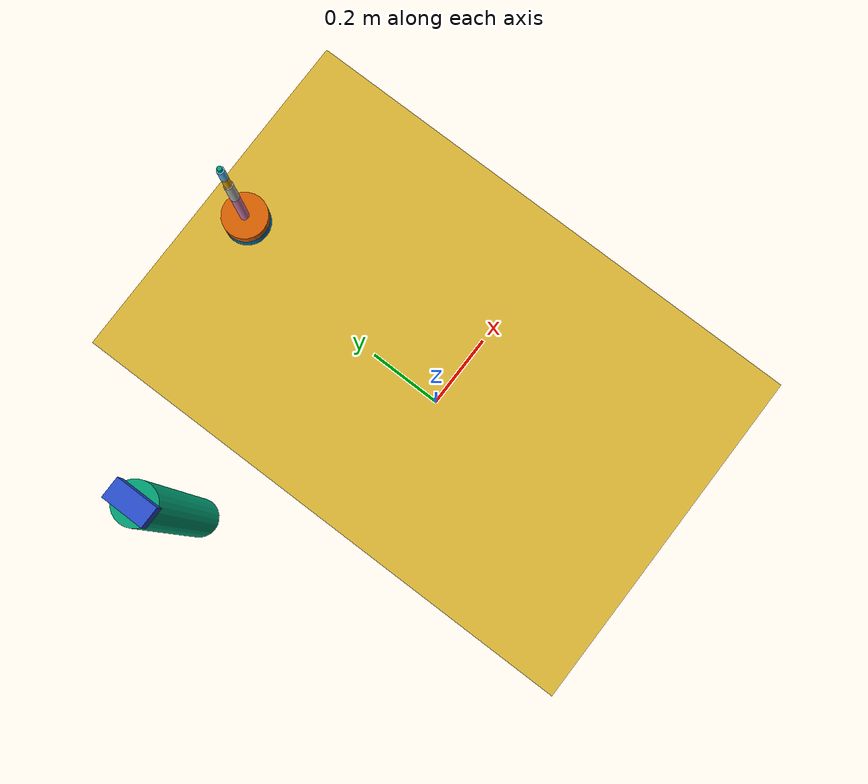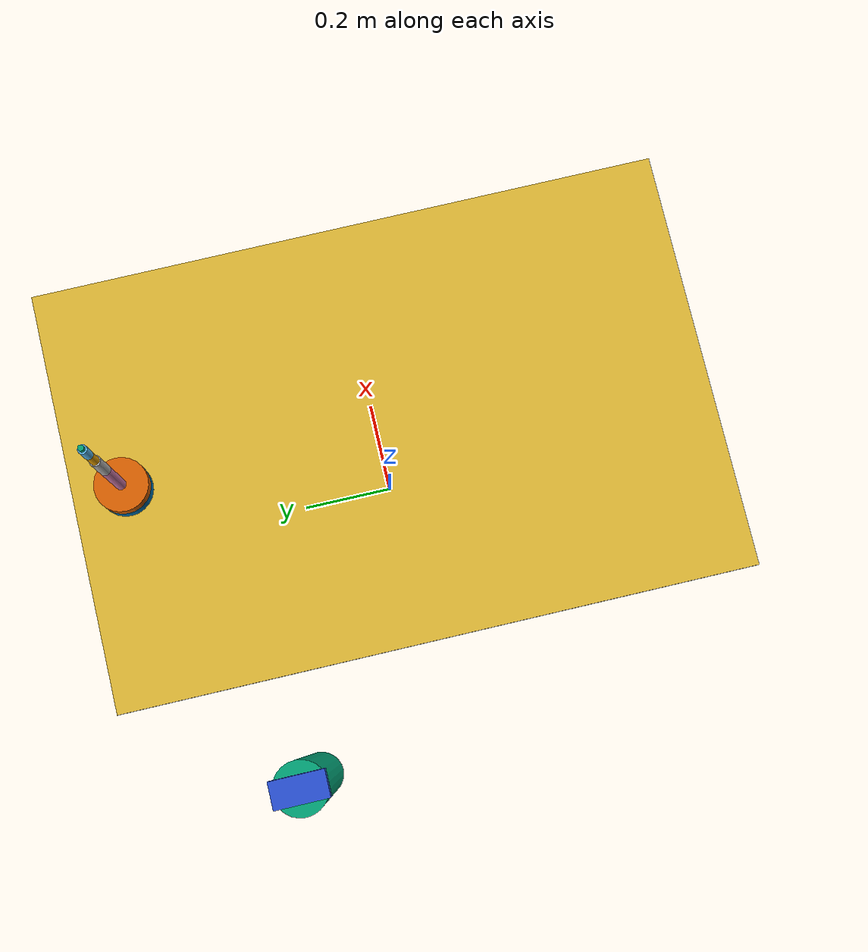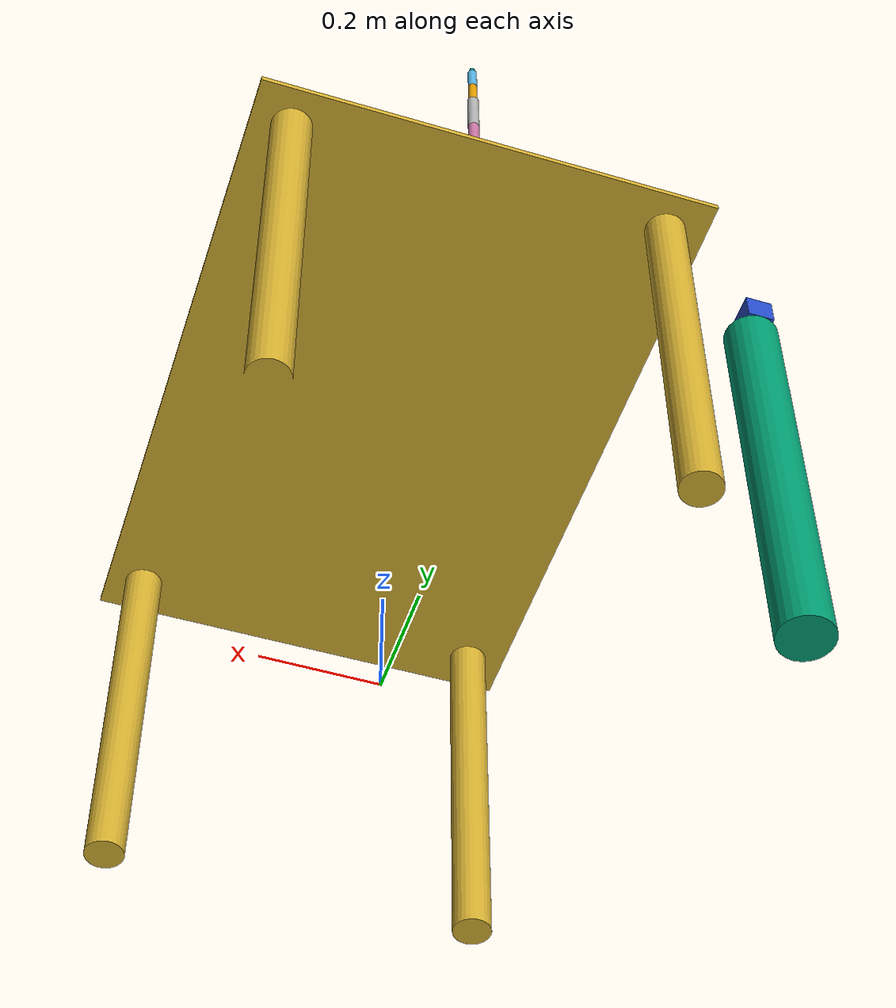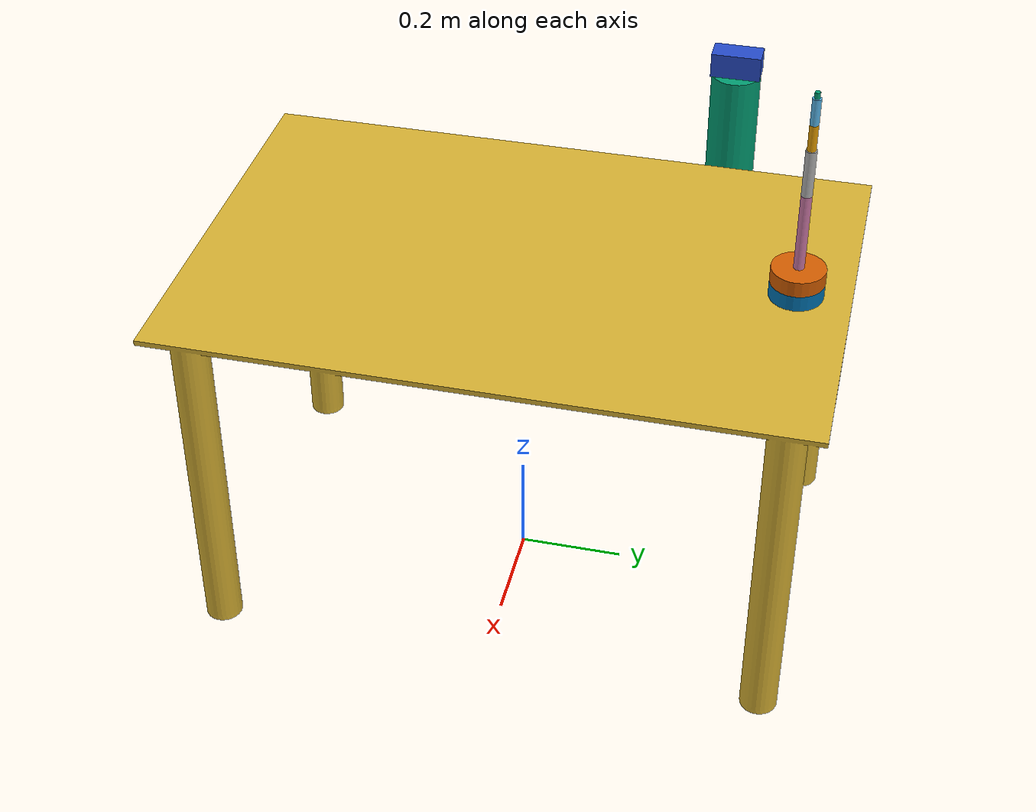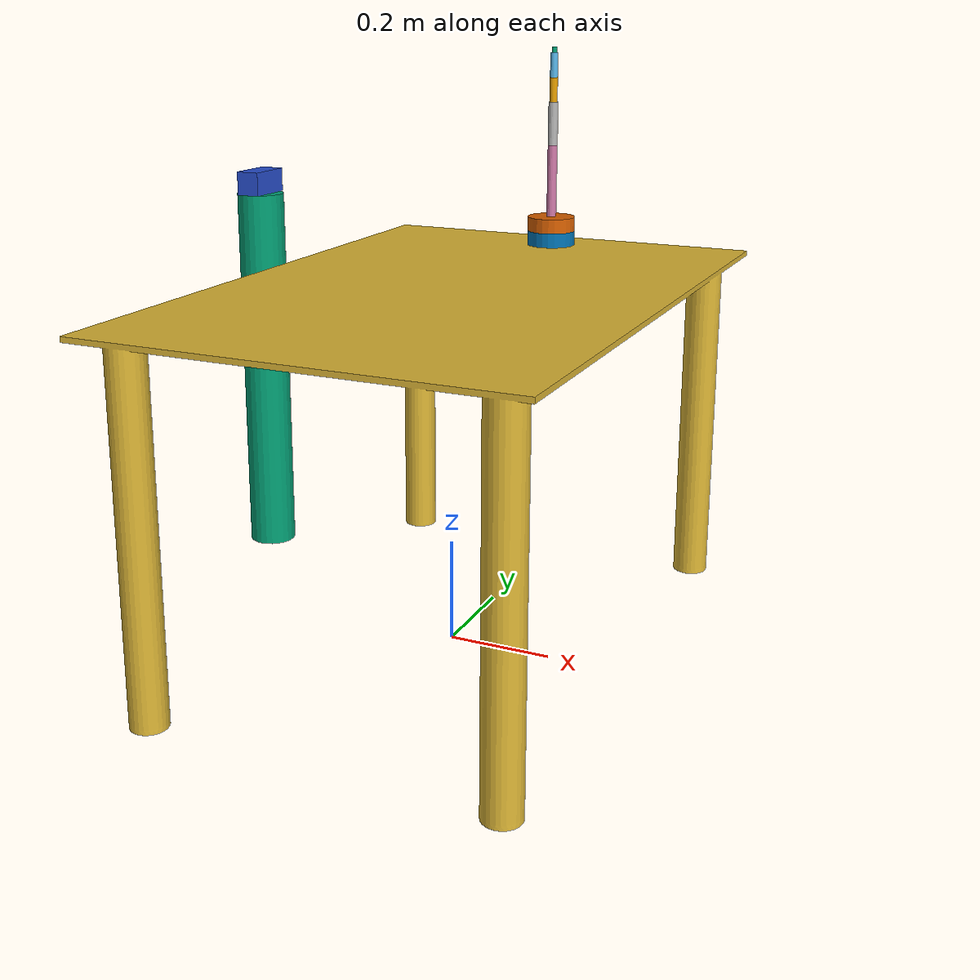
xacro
<?xml version="1.0" ?>

<robot name="zobov_arm" xmlns:xacro="http://www.ros.org/wiki/xacro">

<!-- BGN - Include -->
  <xacro:include filename="$(find zobov_description)/urdf/robot_parameters.xacro" />
  <xacro:include filename="$(find zobov_description)/urdf/links_joints.xacro" />
<!-- END - Include -->

<!-- BGN - World description -->

  <!-- World frame (for Gazebo) -->
  <link name="world"/>

  <!-- Arm fixed to world frame  -->
  <joint name="world_box" type="fixed">
    <parent link="world"/>
    <child link="table"/>
  </joint>

  <m_link_mesh name="table" color="gold"
              origin_rpy="1.57 0 0" origin_xyz="0 0 0"
              mass="157.633"
              ixx="13.235" ixy="0" ixz="0"
              iyy="13.235" iyz="0"
              izz="9.655"
              meshfile_stl="package://zobov_description/meshes/table.stl"
              meshfile_dae="package://zobov_description/meshes/table.dae"
              meshscale="0.001 0.001 0.001" />

  <gazebo reference="table">
    <material>Gazebo/Gold</material>
  </gazebo>

  <joint name="table_${link_00_name}" type="fixed">
    <parent link="table" origin_xyz="0 0 0"/>
    <child link="${link_00_name}"/>
  </joint>

<!-- END - World description -->

<!-- BGN - Depth Camera description -->

  <joint name="world__camera_base" type="fixed">
    <parent link="world"/>
    <child link="camera_base"/>
  </joint>

  <m_link_cylinder name="camera_base"
              origin_rpy="0 0 0" origin_xyz="-0.6 0.3 0.4"
              mass="3000.0"
              radius="0.05" length="0.8" />

  <joint name="base_joint" type="fixed">
    <axis xyz="0 1 0" />
    <origin xyz="-0.6 0.3 0.825" rpy="0 0 0"/>
    <parent link="camera_base"/>
    <child link="${camera_name}"/>
  </joint>

  <link name="${camera_name}">
    <collision>
      <origin xyz="0 0 0" rpy="0 0 0"/>
      <geometry>
    <box size="0.05 0.1 0.05"/>
      </geometry>
    </collision>

    <visual>
      <origin xyz="0 0 0" rpy="0 0 0"/>
      <geometry>
        <box size="0.05 0.1 0.05"/>
      </geometry>
      <material name="blue"/>
    </visual>

    <inertial>
      <mass value="1e-5" />
      <origin xyz="0 0 0" rpy="0 0 0"/>
      <inertia ixx="1e-6" ixy="0" ixz="0" iyy="1e-6" iyz="0" izz="1e-6" />
    </inertial>
  </link>

  <gazebo reference="${camera_name}">
    <material>Gazebo/Blue</material>
  </gazebo>

  <gazebo reference="${camera_name}">
    <sensor type="depth" name="openni_camera_camera">
        <always_on>1</always_on>
        <visualize>true</visualize>
        <camera>
            <horizontal_fov>1.047</horizontal_fov>
            <image>
                <width>640</width>
                <height>480</height>
                <format>R8G8B8</format>
            </image>
            <depth_camera>

            </depth_camera>
            <clip>
                <near>0.1</near>
                <far>100</far>
            </clip>
        </camera>
        <plugin name="camera_controller" filename="libgazebo_ros_openni_kinect.so">
            <alwaysOn>true</alwaysOn>
                <updateRate>10.0</updateRate>
                <cameraName>camera</cameraName>
                <frameName>openni_camera_link</frameName>
            <imageTopicName>rgb/image_raw</imageTopicName>
            <depthImageTopicName>depth/image_raw</depthImageTopicName>
            <pointCloudTopicName>depth/points</pointCloudTopicName>
            <cameraInfoTopicName>rgb/camera_info</cameraInfoTopicName>
            <depthImageCameraInfoTopicName>depth/camera_info</depthImageCameraInfoTopicName>
            <pointCloudCutoff>0.4</pointCloudCutoff>
                <hackBaseline>0.07</hackBaseline>
                <distortionK1>0.0</distortionK1>
                <distortionK2>0.0</distortionK2>
                <distortionK3>0.0</distortionK3>
                <distortionT1>0.0</distortionT1>
                <distortionT2>0.0</distortionT2>
            <CxPrime>0.0</CxPrime>
            <Cx>0.0</Cx>
            <Cy>0.0</Cy>
            <focalLength>0.0</focalLength>
        </plugin>
    </sensor>
  </gazebo>

<!-- END - Depth Camera description -->

<!-- BGN - Robot description -->

  <m_link_cylinder name="${link_00_name}"
              origin_rpy="0 0 0" origin_xyz="0 0.5 0.715"
              mass="1000.0"
              radius="0.05" length="0.03" />

  <m_joint name="${link_00_name}__${link_01_name}" type="revolute"
           axis_xyz="0 0 1"
           origin_rpy="0 0 -1.57" origin_xyz="0 ${origin_y} ${base_l+origin_z}"
           parent="${link_00_name}" child="${link_01_name}"
           limit_e="1000" limit_l="-3.00" limit_u="3.00" limit_v="0.5" />

  <m_link_cylinder name="${link_01_name}"
              origin_rpy="0 0 0" origin_xyz="${origin_x} 0 ${link_01_l/2}"
              mass="500.0"
              radius="${link_01_r}" length="${link_01_l}" />

  <m_joint name="${link_01_name}__${link_02_name}" type="revolute"
           axis_xyz="0 1 0"
           origin_rpy="0 0 0" origin_xyz="0 0 ${link_01_l}"
           parent="${link_01_name}" child="${link_02_name}"
           limit_e="1000" limit_l="-1.57" limit_u="1.57" limit_v="0.5" />

  <m_link_cylinder name="${link_02_name}"
              origin_rpy="0 0 0" origin_xyz="0 0 ${link_02_l/2}"
              mass="200.0"
              radius="${link_02_r}" length="${link_02_l}" />

  <m_joint name="${link_02_name}__${link_03_name}" type="revolute"
           axis_xyz="0 1 0"
           origin_rpy="0 0 0" origin_xyz="0 0 ${link_02_l}"
           parent="${link_02_name}" child="${link_03_name}"
           limit_e="1000" limit_l="-1.57" limit_u="1.57" limit_v="0.5" />

  <m_link_cylinder name="${link_03_name}"
              origin_rpy="0 0 0" origin_xyz="0 0 ${link_03_l/2}"
              mass="200.0"
              radius="${link_03_r}" length="${link_03_l}" />

  <m_joint name="${link_03_name}__${link_04_name}" type="revolute"
           axis_xyz="0 1 0"
           origin_rpy="0 0 0" origin_xyz="0 0 ${link_03_l}"
           parent="${link_03_name}" child="${link_04_name}"
           limit_e="1000" limit_l="-1.57" limit_u="1.57" limit_v="0.5" />

  <m_link_cylinder name="${link_04_name}"
              origin_rpy="0 0 0" origin_xyz="0 0 ${link_04_l/2}"
              mass="50.0"
              radius="${link_04_r}" length="${link_04_l}" />

  <m_joint name="${link_04_name}__${link_05_name}" type="revolute"
           axis_xyz="0 0 1"
           origin_rpy="0 0 0" origin_xyz="0 0 ${link_04_l}"
           parent="${link_04_name}" child="${link_05_name}"
           limit_e="1000" limit_l="-3.0" limit_u="3.0" limit_v="0.5" />

  <m_link_cylinder name="${link_05_name}"
              origin_rpy="0 0 0" origin_xyz="0 0 ${link_05_l/2}"
              mass="50.0"
              radius="${link_05_r}" length="${link_05_l}" />

  <m_joint name="${link_05_name}__${gripper_name}" type="revolute"
           axis_xyz="0 0 1"
           origin_rpy="0 0 0" origin_xyz="0 0 ${link_05_l}"
           parent="${link_05_name}" child="${gripper_name}"
           limit_e="1000" limit_l="-3.0" limit_u="3.0" limit_v="0.5" />

  <m_link_cylinder name="${gripper_name}"
              origin_rpy="0 0 0" origin_xyz="0 0 ${gripper_l/2}"
              mass="10.0"
              radius="${gripper_r}" length="${gripper_l}" />

<!-- END - Robot description -->

<!-- END - Tryout  -->

<!-- BGN - Gazebo Plugin -->
  <gazebo>
    <plugin name="gazebo_ros_control" filename="libgazebo_ros_control.so">
      <robotSimType>gazebo_ros_control/DefaultRobotHWSim</robotSimType>
      <legacyModeNS>true</legacyModeNS>
    </plugin>
  </gazebo>
<!-- END - Gazebo Plugin -->

</robot>

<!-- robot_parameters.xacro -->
<robot xmlns:xacro="http://www.ros.org/wiki/xacro">
  <xacro:property name="origin_x" value="0.0" />
  <xacro:property name="origin_y" value="0.5" />
  <xacro:property name="origin_z" value="0.7" />
  <xacro:property name="link_00_name" value="base_link" />
  <xacro:property name="link_01_name" value="link_01" />
  <xacro:property name="link_02_name" value="link_02" />
  <xacro:property name="link_03_name" value="link_03" />
  <xacro:property name="link_04_name" value="link_04" />
  <xacro:property name="link_05_name" value="link_05" />
  <xacro:property name="gripper_name" value="suction_gripper" />
  <xacro:property name="camera_name" value="openni_camera_link" />
  <xacro:property name="base_r" value="0.05" />
  <xacro:property name="base_l" value="0.03" />
  <xacro:property name="link_01_r" value="0.05" />
  <xacro:property name="link_01_l" value="0.03" />
  <xacro:property name="link_02_r" value="0.01" />
  <xacro:property name="link_02_l" value="0.15" />
  <xacro:property name="link_03_r" value="0.01" />
  <xacro:property name="link_03_l" value="0.09" />
  <xacro:property name="link_04_r" value="0.008" />
  <xacro:property name="link_04_l" value="0.05" />
  <xacro:property name="link_05_r" value="0.008" />
  <xacro:property name="link_05_l" value="0.05" />
  <xacro:property name="gripper_r" value="0.005" />
  <xacro:property name="gripper_l" value="0.012" />

</robot>

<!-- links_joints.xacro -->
<robot xmlns:xacro="http://www.ros.org/wiki/xacro">

  <xacro:macro name="m_joint" params="name type axis_xyz origin_rpy origin_xyz parent child limit_e limit_l limit_u limit_v">
    <joint name="${name}" type="${type}">
      <axis xyz="${axis_xyz}" />
      <limit effort="${limit_e}" lower="${limit_l}" upper="${limit_u}" velocity="${limit_v}" />
      <origin rpy="${origin_rpy}" xyz="${origin_xyz}" />
      <parent link="${parent}" />
      <child link="${child}" />
    </joint>
    <transmission name="${parent}_${child}_transmission">
      <type>transmission_interface/SimpleTransmission</type>
      <joint name="${name}">
        <hardwareInterface>hardware_interface/EffortJointInterface</hardwareInterface>
      </joint>
      <actuator name="${parent}_${child}_actuator">
        <hardwareInterface>hardware_interface/EffortJointInterface</hardwareInterface>
        <mechanicalReduction>1</mechanicalReduction>
      </actuator>
    </transmission>
  </xacro:macro>

  <xacro:macro name="m_link_cylinder" params="name origin_xyz origin_rpy radius length mass">
    <link name="${name}">
      <inertial>
        <mass value="${mass}" />
        <origin rpy="${origin_rpy}" xyz="${origin_xyz}" />
        <inertia ixx="${(mass/12)*(length*length*2)*1000}"
                 iyy="${(mass/12)*(length*length*2)*1000}"
                 izz="${(mass/6)*(length*length)*1000}"
                 ixy="0" iyz="0" ixz="0" />
      </inertial>
      <collision>
        <origin rpy="${origin_rpy}" xyz="${origin_xyz}" />
        <geometry>
          <cylinder radius="${radius}" length="${length}" />
        </geometry>
      </collision>
      <visual>
        <origin rpy="${origin_rpy}" xyz="${origin_xyz}" />
        <geometry>
          <cylinder radius="${radius}" length="${length}" />
        </geometry>
      </visual>
    </link>
  </xacro:macro>

  <xacro:macro name="m_link_mesh" params="name color origin_xyz origin_rpy meshfile_stl meshfile_dae meshscale mass ixx ixy ixz iyy iyz izz">
    <link name="${name}">
      <inertial>
        <mass value="${mass}" />
        <origin rpy="${origin_rpy}" xyz="${origin_xyz}" />
        <inertia ixx="${ixx}" ixy="${ixy}" ixz="${ixz}" iyy="${iyy}" iyz="${iyz}" izz="${izz}" />
      </inertial>
      <collision>
        <origin rpy="${origin_rpy}" xyz="${origin_xyz}" />
        <geometry>
          <mesh filename="${meshfile_stl}" scale="${meshscale}"/>
        </geometry>
      </collision>
      <visual>
        <origin rpy="${origin_rpy}" xyz="${origin_xyz}" />
        <geometry>
          <mesh filename="${meshfile_dae}" scale="${meshscale}"/>
        </geometry>
        <material name="${color}"/>
      </visual>
    </link>
  </xacro:macro>

</robot>
